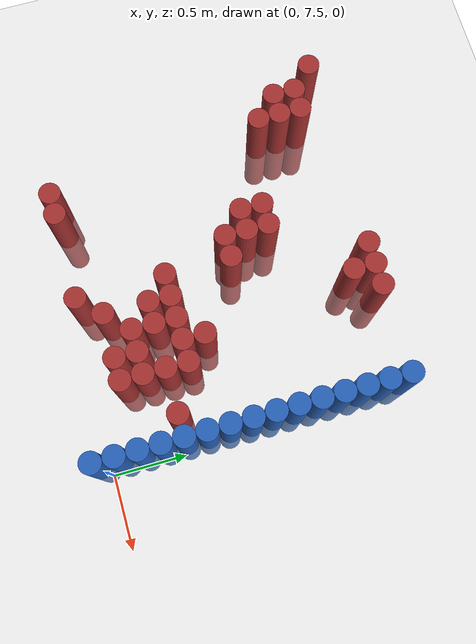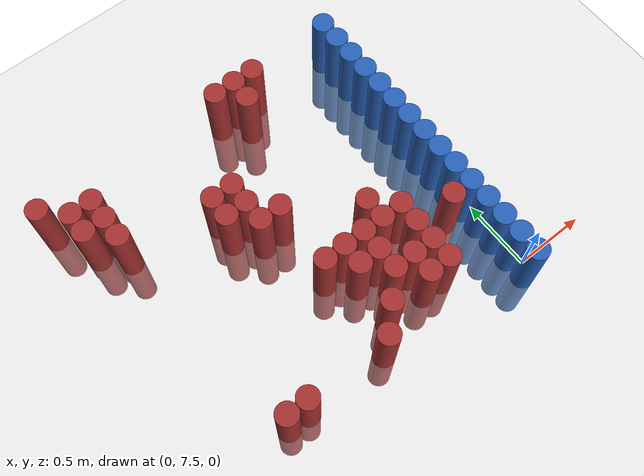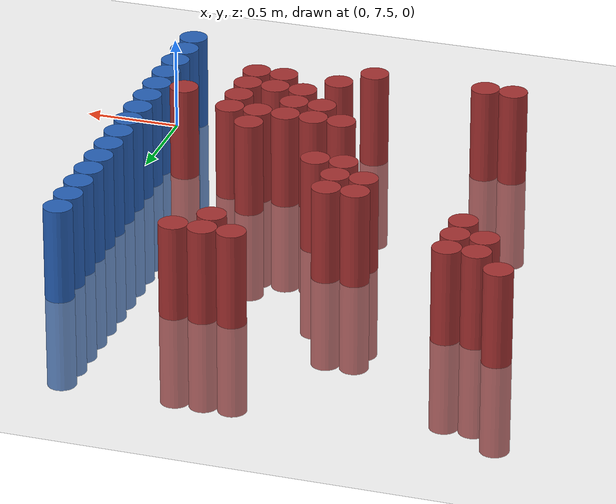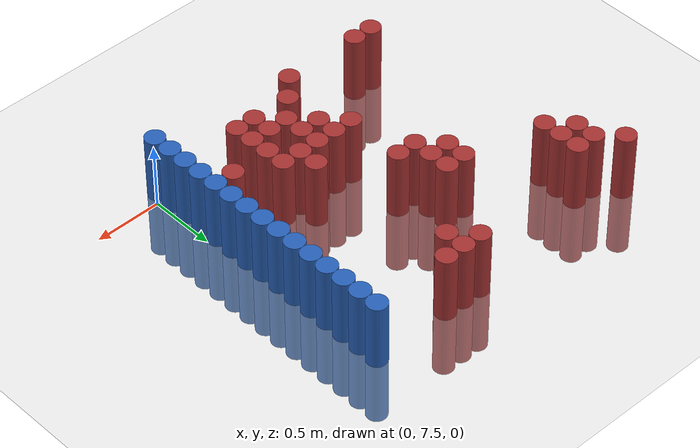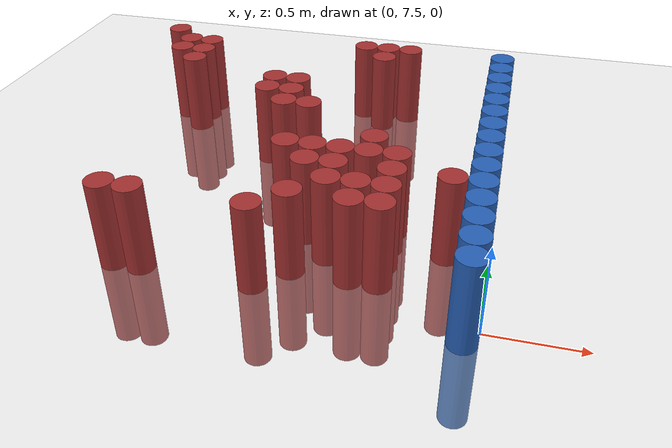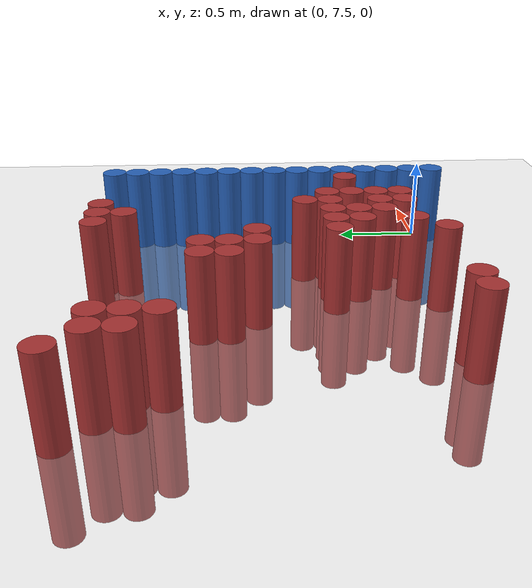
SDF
<sdf version="1.6">
 <world name="default">
  <model name="ground_plane">
   <static>1</static>
   <link name="link">
    <collision name="collision">
     <geometry><plane><normal>0 0 1</normal><size>100 100</size></plane></geometry>
     <surface><friction><ode><mu>100</mu><mu2>50</mu2></ode></friction></surface>
    </collision>
    <visual name="visual">
     <cast_shadows>0</cast_shadows>
     <geometry><plane><normal>0 0 1</normal><size>100 100</size></plane></geometry>
     <material>
      <script><uri>file://media/materials/scripts/gazebo.material</uri><name>Gazebo/Grey</name></script>
     </material>
    </visual>
   </link>
  </model>
  <model name="unit_cylinder_209">
   <static>1</static>
   <pose>-2.325000 9.525000 0.000000 0.000000 0.000000 0.000000</pose>
   <link name="link">
    <inertial>
     <mass>1</mass>
     <inertia><ixx>0.145833</ixx><ixy>0</ixy><ixz>0</ixz><iyy>0.145833</iyy><iyz>0</iyz><izz>0.125</izz></inertia>
    </inertial>
    <collision name="collision">
     <geometry><cylinder><radius>0.075000</radius><length>1</length></cylinder></geometry>
    </collision>
    <visual name="visual">
     <geometry><cylinder><radius>0.075000</radius><length>1</length></cylinder></geometry>
     <material>
      <ambient>0.648000 0.192000 0.192000 1</ambient>
      <diffuse>0.648000 0.192000 0.192000 1</diffuse>
     </material>
     <material>
      <script><name>Gazebo/Grey</name><uri>file://media/materials/scripts/gazebo.material</uri></script>
     </material>
    </visual>
   </link>
  </model>
  <model name="unit_cylinder_213">
   <static>1</static>
   <pose>-2.175000 9.225000 0.000000 0.000000 0.000000 0.000000</pose>
   <link name="link">
    <inertial>
     <mass>1</mass>
     <inertia><ixx>0.145833</ixx><ixy>0</ixy><ixz>0</ixz><iyy>0.145833</iyy><iyz>0</iyz><izz>0.125</izz></inertia>
    </inertial>
    <collision name="collision">
     <geometry><cylinder><radius>0.075000</radius><length>1</length></cylinder></geometry>
    </collision>
    <visual name="visual">
     <geometry><cylinder><radius>0.075000</radius><length>1</length></cylinder></geometry>
     <material>
      <ambient>0.648000 0.192000 0.192000 1</ambient>
      <diffuse>0.648000 0.192000 0.192000 1</diffuse>
     </material>
     <material>
      <script><name>Gazebo/Grey</name><uri>file://media/materials/scripts/gazebo.material</uri></script>
     </material>
    </visual>
   </link>
  </model>
  <model name="unit_cylinder_214">
   <static>1</static>
   <pose>-2.175000 9.375000 0.000000 0.000000 0.000000 0.000000</pose>
   <link name="link">
    <inertial>
     <mass>1</mass>
     <inertia><ixx>0.145833</ixx><ixy>0</ixy><ixz>0</ixz><iyy>0.145833</iyy><iyz>0</iyz><izz>0.125</izz></inertia>
    </inertial>
    <collision name="collision">
     <geometry><cylinder><radius>0.075000</radius><length>1</length></cylinder></geometry>
    </collision>
    <visual name="visual">
     <geometry><cylinder><radius>0.075000</radius><length>1</length></cylinder></geometry>
     <material>
      <ambient>0.648000 0.192000 0.192000 1</ambient>
      <diffuse>0.648000 0.192000 0.192000 1</diffuse>
     </material>
     <material>
      <script><name>Gazebo/Grey</name><uri>file://media/materials/scripts/gazebo.material</uri></script>
     </material>
    </visual>
   </link>
  </model>
  <model name="unit_cylinder_217">
   <static>1</static>
   <pose>-2.025000 9.075000 0.000000 0.000000 0.000000 0.000000</pose>
   <link name="link">
    <inertial>
     <mass>1</mass>
     <inertia><ixx>0.145833</ixx><ixy>0</ixy><ixz>0</ixz><iyy>0.145833</iyy><iyz>0</iyz><izz>0.125</izz></inertia>
    </inertial>
    <collision name="collision">
     <geometry><cylinder><radius>0.075000</radius><length>1</length></cylinder></geometry>
    </collision>
    <visual name="visual">
     <geometry><cylinder><radius>0.075000</radius><length>1</length></cylinder></geometry>
     <material>
      <ambient>0.648000 0.192000 0.192000 1</ambient>
      <diffuse>0.648000 0.192000 0.192000 1</diffuse>
     </material>
     <material>
      <script><name>Gazebo/Grey</name><uri>file://media/materials/scripts/gazebo.material</uri></script>
     </material>
    </visual>
   </link>
  </model>
  <model name="unit_cylinder_218">
   <static>1</static>
   <pose>-2.025000 9.225000 0.000000 0.000000 0.000000 0.000000</pose>
   <link name="link">
    <inertial>
     <mass>1</mass>
     <inertia><ixx>0.145833</ixx><ixy>0</ixy><ixz>0</ixz><iyy>0.145833</iyy><iyz>0</iyz><izz>0.125</izz></inertia>
    </inertial>
    <collision name="collision">
     <geometry><cylinder><radius>0.075000</radius><length>1</length></cylinder></geometry>
    </collision>
    <visual name="visual">
     <geometry><cylinder><radius>0.075000</radius><length>1</length></cylinder></geometry>
     <material>
      <ambient>0.648000 0.192000 0.192000 1</ambient>
      <diffuse>0.648000 0.192000 0.192000 1</diffuse>
     </material>
     <material>
      <script><name>Gazebo/Grey</name><uri>file://media/materials/scripts/gazebo.material</uri></script>
     </material>
    </visual>
   </link>
  </model>
  <model name="unit_cylinder_219">
   <static>1</static>
   <pose>-2.025000 9.375000 0.000000 0.000000 0.000000 0.000000</pose>
   <link name="link">
    <inertial>
     <mass>1</mass>
     <inertia><ixx>0.145833</ixx><ixy>0</ixy><ixz>0</ixz><iyy>0.145833</iyy><iyz>0</iyz><izz>0.125</izz></inertia>
    </inertial>
    <collision name="collision">
     <geometry><cylinder><radius>0.075000</radius><length>1</length></cylinder></geometry>
    </collision>
    <visual name="visual">
     <geometry><cylinder><radius>0.075000</radius><length>1</length></cylinder></geometry>
     <material>
      <ambient>0.648000 0.192000 0.192000 1</ambient>
      <diffuse>0.648000 0.192000 0.192000 1</diffuse>
     </material>
     <material>
      <script><name>Gazebo/Grey</name><uri>file://media/materials/scripts/gazebo.material</uri></script>
     </material>
    </visual>
   </link>
  </model>
  <model name="unit_cylinder_224">
   <static>1</static>
   <pose>-1.875000 7.575000 0.000000 0.000000 0.000000 0.000000</pose>
   <link name="link">
    <inertial>
     <mass>1</mass>
     <inertia><ixx>0.145833</ixx><ixy>0</ixy><ixz>0</ixz><iyy>0.145833</iyy><iyz>0</iyz><izz>0.125</izz></inertia>
    </inertial>
    <collision name="collision">
     <geometry><cylinder><radius>0.075000</radius><length>1</length></cylinder></geometry>
    </collision>
    <visual name="visual">
     <geometry><cylinder><radius>0.075000</radius><length>1</length></cylinder></geometry>
     <material>
      <ambient>0.648000 0.192000 0.192000 1</ambient>
      <diffuse>0.648000 0.192000 0.192000 1</diffuse>
     </material>
     <material>
      <script><name>Gazebo/Grey</name><uri>file://media/materials/scripts/gazebo.material</uri></script>
     </material>
    </visual>
   </link>
  </model>
  <model name="unit_cylinder_231">
   <static>1</static>
   <pose>-1.725000 7.575000 0.000000 0.000000 0.000000 0.000000</pose>
   <link name="link">
    <inertial>
     <mass>1</mass>
     <inertia><ixx>0.145833</ixx><ixy>0</ixy><ixz>0</ixz><iyy>0.145833</iyy><iyz>0</iyz><izz>0.125</izz></inertia>
    </inertial>
    <collision name="collision">
     <geometry><cylinder><radius>0.075000</radius><length>1</length></cylinder></geometry>
    </collision>
    <visual name="visual">
     <geometry><cylinder><radius>0.075000</radius><length>1</length></cylinder></geometry>
     <material>
      <ambient>0.648000 0.192000 0.192000 1</ambient>
      <diffuse>0.648000 0.192000 0.192000 1</diffuse>
     </material>
     <material>
      <script><name>Gazebo/Grey</name><uri>file://media/materials/scripts/gazebo.material</uri></script>
     </material>
    </visual>
   </link>
  </model>
  <model name="unit_cylinder_245">
   <static>1</static>
   <pose>-1.425000 8.775000 0.000000 0.000000 0.000000 0.000000</pose>
   <link name="link">
    <inertial>
     <mass>1</mass>
     <inertia><ixx>0.145833</ixx><ixy>0</ixy><ixz>0</ixz><iyy>0.145833</iyy><iyz>0</iyz><izz>0.125</izz></inertia>
    </inertial>
    <collision name="collision">
     <geometry><cylinder><radius>0.075000</radius><length>1</length></cylinder></geometry>
    </collision>
    <visual name="visual">
     <geometry><cylinder><radius>0.075000</radius><length>1</length></cylinder></geometry>
     <material>
      <ambient>0.648000 0.192000 0.192000 1</ambient>
      <diffuse>0.648000 0.192000 0.192000 1</diffuse>
     </material>
     <material>
      <script><name>Gazebo/Grey</name><uri>file://media/materials/scripts/gazebo.material</uri></script>
     </material>
    </visual>
   </link>
  </model>
  <model name="unit_cylinder_246">
   <static>1</static>
   <pose>-1.425000 8.925000 0.000000 0.000000 0.000000 0.000000</pose>
   <link name="link">
    <inertial>
     <mass>1</mass>
     <inertia><ixx>0.145833</ixx><ixy>0</ixy><ixz>0</ixz><iyy>0.145833</iyy><iyz>0</iyz><izz>0.125</izz></inertia>
    </inertial>
    <collision name="collision">
     <geometry><cylinder><radius>0.075000</radius><length>1</length></cylinder></geometry>
    </collision>
    <visual name="visual">
     <geometry><cylinder><radius>0.075000</radius><length>1</length></cylinder></geometry>
     <material>
      <ambient>0.648000 0.192000 0.192000 1</ambient>
      <diffuse>0.648000 0.192000 0.192000 1</diffuse>
     </material>
     <material>
      <script><name>Gazebo/Grey</name><uri>file://media/materials/scripts/gazebo.material</uri></script>
     </material>
    </visual>
   </link>
  </model>
  <model name="unit_cylinder_253">
   <static>1</static>
   <pose>-1.275000 8.625000 0.000000 0.000000 0.000000 0.000000</pose>
   <link name="link">
    <inertial>
     <mass>1</mass>
     <inertia><ixx>0.145833</ixx><ixy>0</ixy><ixz>0</ixz><iyy>0.145833</iyy><iyz>0</iyz><izz>0.125</izz></inertia>
    </inertial>
    <collision name="collision">
     <geometry><cylinder><radius>0.075000</radius><length>1</length></cylinder></geometry>
    </collision>
    <visual name="visual">
     <geometry><cylinder><radius>0.075000</radius><length>1</length></cylinder></geometry>
     <material>
      <ambient>0.648000 0.192000 0.192000 1</ambient>
      <diffuse>0.648000 0.192000 0.192000 1</diffuse>
     </material>
     <material>
      <script><name>Gazebo/Grey</name><uri>file://media/materials/scripts/gazebo.material</uri></script>
     </material>
    </visual>
   </link>
  </model>
  <model name="unit_cylinder_254">
   <static>1</static>
   <pose>-1.275000 8.775000 0.000000 0.000000 0.000000 0.000000</pose>
   <link name="link">
    <inertial>
     <mass>1</mass>
     <inertia><ixx>0.145833</ixx><ixy>0</ixy><ixz>0</ixz><iyy>0.145833</iyy><iyz>0</iyz><izz>0.125</izz></inertia>
    </inertial>
    <collision name="collision">
     <geometry><cylinder><radius>0.075000</radius><length>1</length></cylinder></geometry>
    </collision>
    <visual name="visual">
     <geometry><cylinder><radius>0.075000</radius><length>1</length></cylinder></geometry>
     <material>
      <ambient>0.648000 0.192000 0.192000 1</ambient>
      <diffuse>0.648000 0.192000 0.192000 1</diffuse>
     </material>
     <material>
      <script><name>Gazebo/Grey</name><uri>file://media/materials/scripts/gazebo.material</uri></script>
     </material>
    </visual>
   </link>
  </model>
  <model name="unit_cylinder_255">
   <static>1</static>
   <pose>-1.275000 8.925000 0.000000 0.000000 0.000000 0.000000</pose>
   <link name="link">
    <inertial>
     <mass>1</mass>
     <inertia><ixx>0.145833</ixx><ixy>0</ixy><ixz>0</ixz><iyy>0.145833</iyy><iyz>0</iyz><izz>0.125</izz></inertia>
    </inertial>
    <collision name="collision">
     <geometry><cylinder><radius>0.075000</radius><length>1</length></cylinder></geometry>
    </collision>
    <visual name="visual">
     <geometry><cylinder><radius>0.075000</radius><length>1</length></cylinder></geometry>
     <material>
      <ambient>0.648000 0.192000 0.192000 1</ambient>
      <diffuse>0.648000 0.192000 0.192000 1</diffuse>
     </material>
     <material>
      <script><name>Gazebo/Grey</name><uri>file://media/materials/scripts/gazebo.material</uri></script>
     </material>
    </visual>
   </link>
  </model>
  <model name="unit_cylinder_263">
   <static>1</static>
   <pose>-1.125000 7.575000 0.000000 0.000000 0.000000 0.000000</pose>
   <link name="link">
    <inertial>
     <mass>1</mass>
     <inertia><ixx>0.145833</ixx><ixy>0</ixy><ixz>0</ixz><iyy>0.145833</iyy><iyz>0</iyz><izz>0.125</izz></inertia>
    </inertial>
    <collision name="collision">
     <geometry><cylinder><radius>0.075000</radius><length>1</length></cylinder></geometry>
    </collision>
    <visual name="visual">
     <geometry><cylinder><radius>0.075000</radius><length>1</length></cylinder></geometry>
     <material>
      <ambient>0.648000 0.192000 0.192000 1</ambient>
      <diffuse>0.648000 0.192000 0.192000 1</diffuse>
     </material>
     <material>
      <script><name>Gazebo/Grey</name><uri>file://media/materials/scripts/gazebo.material</uri></script>
     </material>
    </visual>
   </link>
  </model>
  <model name="unit_cylinder_264">
   <static>1</static>
   <pose>-1.125000 8.175000 0.000000 0.000000 0.000000 0.000000</pose>
   <link name="link">
    <inertial>
     <mass>1</mass>
     <inertia><ixx>0.145833</ixx><ixy>0</ixy><ixz>0</ixz><iyy>0.145833</iyy><iyz>0</iyz><izz>0.125</izz></inertia>
    </inertial>
    <collision name="collision">
     <geometry><cylinder><radius>0.075000</radius><length>1</length></cylinder></geometry>
    </collision>
    <visual name="visual">
     <geometry><cylinder><radius>0.075000</radius><length>1</length></cylinder></geometry>
     <material>
      <ambient>0.648000 0.192000 0.192000 1</ambient>
      <diffuse>0.648000 0.192000 0.192000 1</diffuse>
     </material>
     <material>
      <script><name>Gazebo/Grey</name><uri>file://media/materials/scripts/gazebo.material</uri></script>
     </material>
    </visual>
   </link>
  </model>
  <model name="unit_cylinder_265">
   <static>1</static>
   <pose>-1.125000 8.625000 0.000000 0.000000 0.000000 0.000000</pose>
   <link name="link">
    <inertial>
     <mass>1</mass>
     <inertia><ixx>0.145833</ixx><ixy>0</ixy><ixz>0</ixz><iyy>0.145833</iyy><iyz>0</iyz><izz>0.125</izz></inertia>
    </inertial>
    <collision name="collision">
     <geometry><cylinder><radius>0.075000</radius><length>1</length></cylinder></geometry>
    </collision>
    <visual name="visual">
     <geometry><cylinder><radius>0.075000</radius><length>1</length></cylinder></geometry>
     <material>
      <ambient>0.648000 0.192000 0.192000 1</ambient>
      <diffuse>0.648000 0.192000 0.192000 1</diffuse>
     </material>
     <material>
      <script><name>Gazebo/Grey</name><uri>file://media/materials/scripts/gazebo.material</uri></script>
     </material>
    </visual>
   </link>
  </model>
  <model name="unit_cylinder_271">
   <static>1</static>
   <pose>-0.975000 7.725000 0.000000 0.000000 0.000000 0.000000</pose>
   <link name="link">
    <inertial>
     <mass>1</mass>
     <inertia><ixx>0.145833</ixx><ixy>0</ixy><ixz>0</ixz><iyy>0.145833</iyy><iyz>0</iyz><izz>0.125</izz></inertia>
    </inertial>
    <collision name="collision">
     <geometry><cylinder><radius>0.075000</radius><length>1</length></cylinder></geometry>
    </collision>
    <visual name="visual">
     <geometry><cylinder><radius>0.075000</radius><length>1</length></cylinder></geometry>
     <material>
      <ambient>0.648000 0.192000 0.192000 1</ambient>
      <diffuse>0.648000 0.192000 0.192000 1</diffuse>
     </material>
     <material>
      <script><name>Gazebo/Grey</name><uri>file://media/materials/scripts/gazebo.material</uri></script>
     </material>
    </visual>
   </link>
  </model>
  <model name="unit_cylinder_272">
   <static>1</static>
   <pose>-0.975000 8.025000 0.000000 0.000000 0.000000 0.000000</pose>
   <link name="link">
    <inertial>
     <mass>1</mass>
     <inertia><ixx>0.145833</ixx><ixy>0</ixy><ixz>0</ixz><iyy>0.145833</iyy><iyz>0</iyz><izz>0.125</izz></inertia>
    </inertial>
    <collision name="collision">
     <geometry><cylinder><radius>0.075000</radius><length>1</length></cylinder></geometry>
    </collision>
    <visual name="visual">
     <geometry><cylinder><radius>0.075000</radius><length>1</length></cylinder></geometry>
     <material>
      <ambient>0.648000 0.192000 0.192000 1</ambient>
      <diffuse>0.648000 0.192000 0.192000 1</diffuse>
     </material>
     <material>
      <script><name>Gazebo/Grey</name><uri>file://media/materials/scripts/gazebo.material</uri></script>
     </material>
    </visual>
   </link>
  </model>
  <model name="unit_cylinder_273">
   <static>1</static>
   <pose>-0.975000 8.175000 0.000000 0.000000 0.000000 0.000000</pose>
   <link name="link">
    <inertial>
     <mass>1</mass>
     <inertia><ixx>0.145833</ixx><ixy>0</ixy><ixz>0</ixz><iyy>0.145833</iyy><iyz>0</iyz><izz>0.125</izz></inertia>
    </inertial>
    <collision name="collision">
     <geometry><cylinder><radius>0.075000</radius><length>1</length></cylinder></geometry>
    </collision>
    <visual name="visual">
     <geometry><cylinder><radius>0.075000</radius><length>1</length></cylinder></geometry>
     <material>
      <ambient>0.648000 0.192000 0.192000 1</ambient>
      <diffuse>0.648000 0.192000 0.192000 1</diffuse>
     </material>
     <material>
      <script><name>Gazebo/Grey</name><uri>file://media/materials/scripts/gazebo.material</uri></script>
     </material>
    </visual>
   </link>
  </model>
  <model name="unit_cylinder_274">
   <static>1</static>
   <pose>-0.975000 9.525000 0.000000 0.000000 0.000000 0.000000</pose>
   <link name="link">
    <inertial>
     <mass>1</mass>
     <inertia><ixx>0.145833</ixx><ixy>0</ixy><ixz>0</ixz><iyy>0.145833</iyy><iyz>0</iyz><izz>0.125</izz></inertia>
    </inertial>
    <collision name="collision">
     <geometry><cylinder><radius>0.075000</radius><length>1</length></cylinder></geometry>
    </collision>
    <visual name="visual">
     <geometry><cylinder><radius>0.075000</radius><length>1</length></cylinder></geometry>
     <material>
      <ambient>0.648000 0.192000 0.192000 1</ambient>
      <diffuse>0.648000 0.192000 0.192000 1</diffuse>
     </material>
     <material>
      <script><name>Gazebo/Grey</name><uri>file://media/materials/scripts/gazebo.material</uri></script>
     </material>
    </visual>
   </link>
  </model>
  <model name="unit_cylinder_281">
   <static>1</static>
   <pose>-0.825000 7.875000 0.000000 0.000000 0.000000 0.000000</pose>
   <link name="link">
    <inertial>
     <mass>1</mass>
     <inertia><ixx>0.145833</ixx><ixy>0</ixy><ixz>0</ixz><iyy>0.145833</iyy><iyz>0</iyz><izz>0.125</izz></inertia>
    </inertial>
    <collision name="collision">
     <geometry><cylinder><radius>0.075000</radius><length>1</length></cylinder></geometry>
    </collision>
    <visual name="visual">
     <geometry><cylinder><radius>0.075000</radius><length>1</length></cylinder></geometry>
     <material>
      <ambient>0.648000 0.192000 0.192000 1</ambient>
      <diffuse>0.648000 0.192000 0.192000 1</diffuse>
     </material>
     <material>
      <script><name>Gazebo/Grey</name><uri>file://media/materials/scripts/gazebo.material</uri></script>
     </material>
    </visual>
   </link>
  </model>
  <model name="unit_cylinder_282">
   <static>1</static>
   <pose>-0.825000 8.025000 0.000000 0.000000 0.000000 0.000000</pose>
   <link name="link">
    <inertial>
     <mass>1</mass>
     <inertia><ixx>0.145833</ixx><ixy>0</ixy><ixz>0</ixz><iyy>0.145833</iyy><iyz>0</iyz><izz>0.125</izz></inertia>
    </inertial>
    <collision name="collision">
     <geometry><cylinder><radius>0.075000</radius><length>1</length></cylinder></geometry>
    </collision>
    <visual name="visual">
     <geometry><cylinder><radius>0.075000</radius><length>1</length></cylinder></geometry>
     <material>
      <ambient>0.648000 0.192000 0.192000 1</ambient>
      <diffuse>0.648000 0.192000 0.192000 1</diffuse>
     </material>
     <material>
      <script><name>Gazebo/Grey</name><uri>file://media/materials/scripts/gazebo.material</uri></script>
     </material>
    </visual>
   </link>
  </model>
  <model name="unit_cylinder_283">
   <static>1</static>
   <pose>-0.825000 8.175000 0.000000 0.000000 0.000000 0.000000</pose>
   <link name="link">
    <inertial>
     <mass>1</mass>
     <inertia><ixx>0.145833</ixx><ixy>0</ixy><ixz>0</ixz><iyy>0.145833</iyy><iyz>0</iyz><izz>0.125</izz></inertia>
    </inertial>
    <collision name="collision">
     <geometry><cylinder><radius>0.075000</radius><length>1</length></cylinder></geometry>
    </collision>
    <visual name="visual">
     <geometry><cylinder><radius>0.075000</radius><length>1</length></cylinder></geometry>
     <material>
      <ambient>0.648000 0.192000 0.192000 1</ambient>
      <diffuse>0.648000 0.192000 0.192000 1</diffuse>
     </material>
     <material>
      <script><name>Gazebo/Grey</name><uri>file://media/materials/scripts/gazebo.material</uri></script>
     </material>
    </visual>
   </link>
  </model>
  <model name="unit_cylinder_284">
   <static>1</static>
   <pose>-0.825000 9.375000 0.000000 0.000000 0.000000 0.000000</pose>
   <link name="link">
    <inertial>
     <mass>1</mass>
     <inertia><ixx>0.145833</ixx><ixy>0</ixy><ixz>0</ixz><iyy>0.145833</iyy><iyz>0</iyz><izz>0.125</izz></inertia>
    </inertial>
    <collision name="collision">
     <geometry><cylinder><radius>0.075000</radius><length>1</length></cylinder></geometry>
    </collision>
    <visual name="visual">
     <geometry><cylinder><radius>0.075000</radius><length>1</length></cylinder></geometry>
     <material>
      <ambient>0.648000 0.192000 0.192000 1</ambient>
      <diffuse>0.648000 0.192000 0.192000 1</diffuse>
     </material>
     <material>
      <script><name>Gazebo/Grey</name><uri>file://media/materials/scripts/gazebo.material</uri></script>
     </material>
    </visual>
   </link>
  </model>
  <model name="unit_cylinder_285">
   <static>1</static>
   <pose>-0.825000 9.525000 0.000000 0.000000 0.000000 0.000000</pose>
   <link name="link">
    <inertial>
     <mass>1</mass>
     <inertia><ixx>0.145833</ixx><ixy>0</ixy><ixz>0</ixz><iyy>0.145833</iyy><iyz>0</iyz><izz>0.125</izz></inertia>
    </inertial>
    <collision name="collision">
     <geometry><cylinder><radius>0.075000</radius><length>1</length></cylinder></geometry>
    </collision>
    <visual name="visual">
     <geometry><cylinder><radius>0.075000</radius><length>1</length></cylinder></geometry>
     <material>
      <ambient>0.648000 0.192000 0.192000 1</ambient>
      <diffuse>0.648000 0.192000 0.192000 1</diffuse>
     </material>
     <material>
      <script><name>Gazebo/Grey</name><uri>file://media/materials/scripts/gazebo.material</uri></script>
     </material>
    </visual>
   </link>
  </model>
  <model name="unit_cylinder_291">
   <static>1</static>
   <pose>-0.675000 7.725000 0.000000 0.000000 0.000000 0.000000</pose>
   <link name="link">
    <inertial>
     <mass>1</mass>
     <inertia><ixx>0.145833</ixx><ixy>0</ixy><ixz>0</ixz><iyy>0.145833</iyy><iyz>0</iyz><izz>0.125</izz></inertia>
    </inertial>
    <collision name="collision">
     <geometry><cylinder><radius>0.075000</radius><length>1</length></cylinder></geometry>
    </collision>
    <visual name="visual">
     <geometry><cylinder><radius>0.075000</radius><length>1</length></cylinder></geometry>
     <material>
      <ambient>0.648000 0.192000 0.192000 1</ambient>
      <diffuse>0.648000 0.192000 0.192000 1</diffuse>
     </material>
     <material>
      <script><name>Gazebo/Grey</name><uri>file://media/materials/scripts/gazebo.material</uri></script>
     </material>
    </visual>
   </link>
  </model>
  <model name="unit_cylinder_292">
   <static>1</static>
   <pose>-0.675000 7.875000 0.000000 0.000000 0.000000 0.000000</pose>
   <link name="link">
    <inertial>
     <mass>1</mass>
     <inertia><ixx>0.145833</ixx><ixy>0</ixy><ixz>0</ixz><iyy>0.145833</iyy><iyz>0</iyz><izz>0.125</izz></inertia>
    </inertial>
    <collision name="collision">
     <geometry><cylinder><radius>0.075000</radius><length>1</length></cylinder></geometry>
    </collision>
    <visual name="visual">
     <geometry><cylinder><radius>0.075000</radius><length>1</length></cylinder></geometry>
     <material>
      <ambient>0.648000 0.192000 0.192000 1</ambient>
      <diffuse>0.648000 0.192000 0.192000 1</diffuse>
     </material>
     <material>
      <script><name>Gazebo/Grey</name><uri>file://media/materials/scripts/gazebo.material</uri></script>
     </material>
    </visual>
   </link>
  </model>
  <model name="unit_cylinder_293">
   <static>1</static>
   <pose>-0.675000 8.175000 0.000000 0.000000 0.000000 0.000000</pose>
   <link name="link">
    <inertial>
     <mass>1</mass>
     <inertia><ixx>0.145833</ixx><ixy>0</ixy><ixz>0</ixz><iyy>0.145833</iyy><iyz>0</iyz><izz>0.125</izz></inertia>
    </inertial>
    <collision name="collision">
     <geometry><cylinder><radius>0.075000</radius><length>1</length></cylinder></geometry>
    </collision>
    <visual name="visual">
     <geometry><cylinder><radius>0.075000</radius><length>1</length></cylinder></geometry>
     <material>
      <ambient>0.648000 0.192000 0.192000 1</ambient>
      <diffuse>0.648000 0.192000 0.192000 1</diffuse>
     </material>
     <material>
      <script><name>Gazebo/Grey</name><uri>file://media/materials/scripts/gazebo.material</uri></script>
     </material>
    </visual>
   </link>
  </model>
  <model name="unit_cylinder_294">
   <static>1</static>
   <pose>-0.675000 8.325000 0.000000 0.000000 0.000000 0.000000</pose>
   <link name="link">
    <inertial>
     <mass>1</mass>
     <inertia><ixx>0.145833</ixx><ixy>0</ixy><ixz>0</ixz><iyy>0.145833</iyy><iyz>0</iyz><izz>0.125</izz></inertia>
    </inertial>
    <collision name="collision">
     <geometry><cylinder><radius>0.075000</radius><length>1</length></cylinder></geometry>
    </collision>
    <visual name="visual">
     <geometry><cylinder><radius>0.075000</radius><length>1</length></cylinder></geometry>
     <material>
      <ambient>0.648000 0.192000 0.192000 1</ambient>
      <diffuse>0.648000 0.192000 0.192000 1</diffuse>
     </material>
     <material>
      <script><name>Gazebo/Grey</name><uri>file://media/materials/scripts/gazebo.material</uri></script>
     </material>
    </visual>
   </link>
  </model>
  <model name="unit_cylinder_295">
   <static>1</static>
   <pose>-0.675000 9.525000 0.000000 0.000000 0.000000 0.000000</pose>
   <link name="link">
    <inertial>
     <mass>1</mass>
     <inertia><ixx>0.145833</ixx><ixy>0</ixy><ixz>0</ixz><iyy>0.145833</iyy><iyz>0</iyz><izz>0.125</izz></inertia>
    </inertial>
    <collision name="collision">
     <geometry><cylinder><radius>0.075000</radius><length>1</length></cylinder></geometry>
    </collision>
    <visual name="visual">
     <geometry><cylinder><radius>0.075000</radius><length>1</length></cylinder></geometry>
     <material>
      <ambient>0.648000 0.192000 0.192000 1</ambient>
      <diffuse>0.648000 0.192000 0.192000 1</diffuse>
     </material>
     <material>
      <script><name>Gazebo/Grey</name><uri>file://media/materials/scripts/gazebo.material</uri></script>
     </material>
    </visual>
   </link>
  </model>
  <model name="unit_cylinder_300">
   <static>1</static>
   <pose>-0.525000 7.725000 0.000000 0.000000 0.000000 0.000000</pose>
   <link name="link">
    <inertial>
     <mass>1</mass>
     <inertia><ixx>0.145833</ixx><ixy>0</ixy><ixz>0</ixz><iyy>0.145833</iyy><iyz>0</iyz><izz>0.125</izz></inertia>
    </inertial>
    <collision name="collision">
     <geometry><cylinder><radius>0.075000</radius><length>1</length></cylinder></geometry>
    </collision>
    <visual name="visual">
     <geometry><cylinder><radius>0.075000</radius><length>1</length></cylinder></geometry>
     <material>
      <ambient>0.648000 0.192000 0.192000 1</ambient>
      <diffuse>0.648000 0.192000 0.192000 1</diffuse>
     </material>
     <material>
      <script><name>Gazebo/Grey</name><uri>file://media/materials/scripts/gazebo.material</uri></script>
     </material>
    </visual>
   </link>
  </model>
  <model name="unit_cylinder_301">
   <static>1</static>
   <pose>-0.525000 7.875000 0.000000 0.000000 0.000000 0.000000</pose>
   <link name="link">
    <inertial>
     <mass>1</mass>
     <inertia><ixx>0.145833</ixx><ixy>0</ixy><ixz>0</ixz><iyy>0.145833</iyy><iyz>0</iyz><izz>0.125</izz></inertia>
    </inertial>
    <collision name="collision">
     <geometry><cylinder><radius>0.075000</radius><length>1</length></cylinder></geometry>
    </collision>
    <visual name="visual">
     <geometry><cylinder><radius>0.075000</radius><length>1</length></cylinder></geometry>
     <material>
      <ambient>0.648000 0.192000 0.192000 1</ambient>
      <diffuse>0.648000 0.192000 0.192000 1</diffuse>
     </material>
     <material>
      <script><name>Gazebo/Grey</name><uri>file://media/materials/scripts/gazebo.material</uri></script>
     </material>
    </visual>
   </link>
  </model>
  <model name="unit_cylinder_302">
   <static>1</static>
   <pose>-0.525000 8.025000 0.000000 0.000000 0.000000 0.000000</pose>
   <link name="link">
    <inertial>
     <mass>1</mass>
     <inertia><ixx>0.145833</ixx><ixy>0</ixy><ixz>0</ixz><iyy>0.145833</iyy><iyz>0</iyz><izz>0.125</izz></inertia>
    </inertial>
    <collision name="collision">
     <geometry><cylinder><radius>0.075000</radius><length>1</length></cylinder></geometry>
    </collision>
    <visual name="visual">
     <geometry><cylinder><radius>0.075000</radius><length>1</length></cylinder></geometry>
     <material>
      <ambient>0.648000 0.192000 0.192000 1</ambient>
      <diffuse>0.648000 0.192000 0.192000 1</diffuse>
     </material>
     <material>
      <script><name>Gazebo/Grey</name><uri>file://media/materials/scripts/gazebo.material</uri></script>
     </material>
    </visual>
   </link>
  </model>
  <model name="unit_cylinder_303">
   <static>1</static>
   <pose>-0.525000 8.175000 0.000000 0.000000 0.000000 0.000000</pose>
   <link name="link">
    <inertial>
     <mass>1</mass>
     <inertia><ixx>0.145833</ixx><ixy>0</ixy><ixz>0</ixz><iyy>0.145833</iyy><iyz>0</iyz><izz>0.125</izz></inertia>
    </inertial>
    <collision name="collision">
     <geometry><cylinder><radius>0.075000</radius><length>1</length></cylinder></geometry>
    </collision>
    <visual name="visual">
     <geometry><cylinder><radius>0.075000</radius><length>1</length></cylinder></geometry>
     <material>
      <ambient>0.648000 0.192000 0.192000 1</ambient>
      <diffuse>0.648000 0.192000 0.192000 1</diffuse>
     </material>
     <material>
      <script><name>Gazebo/Grey</name><uri>file://media/materials/scripts/gazebo.material</uri></script>
     </material>
    </visual>
   </link>
  </model>
  <model name="unit_cylinder_315">
   <static>1</static>
   <pose>-0.225000 8.025000 0.000000 0.000000 0.000000 0.000000</pose>
   <link name="link">
    <inertial>
     <mass>1</mass>
     <inertia><ixx>0.145833</ixx><ixy>0</ixy><ixz>0</ixz><iyy>0.145833</iyy><iyz>0</iyz><izz>0.125</izz></inertia>
    </inertial>
    <collision name="collision">
     <geometry><cylinder><radius>0.075000</radius><length>1</length></cylinder></geometry>
    </collision>
    <visual name="visual">
     <geometry><cylinder><radius>0.075000</radius><length>1</length></cylinder></geometry>
     <material>
      <ambient>0.648000 0.192000 0.192000 1</ambient>
      <diffuse>0.648000 0.192000 0.192000 1</diffuse>
     </material>
     <material>
      <script><name>Gazebo/Grey</name><uri>file://media/materials/scripts/gazebo.material</uri></script>
     </material>
    </visual>
   </link>
  </model>
  <model name="unit_cylinder_331">
   <static>1</static>
   <pose>-0.075000 7.425000 0.000000 0.000000 0.000000 0.000000</pose>
   <link name="link">
    <inertial>
     <mass>1</mass>
     <inertia><ixx>0.145833</ixx><ixy>0</ixy><ixz>0</ixz><iyy>0.145833</iyy><iyz>0</iyz><izz>0.125</izz></inertia>
    </inertial>
    <collision name="collision">
     <geometry><cylinder><radius>0.075000</radius><length>1</length></cylinder></geometry>
    </collision>
    <visual name="visual">
     <geometry><cylinder><radius>0.075000</radius><length>1</length></cylinder></geometry>
     <material>
      <ambient>0.152000 0.379000 0.720000 1</ambient>
      <diffuse>0.152000 0.379000 0.720000 1</diffuse>
     </material>
     <material>
      <script><name>Gazebo/Grey</name><uri>file://media/materials/scripts/gazebo.material</uri></script>
     </material>
    </visual>
   </link>
  </model>
  <model name="unit_cylinder_332">
   <static>1</static>
   <pose>-0.075000 7.575000 0.000000 0.000000 0.000000 0.000000</pose>
   <link name="link">
    <inertial>
     <mass>1</mass>
     <inertia><ixx>0.145833</ixx><ixy>0</ixy><ixz>0</ixz><iyy>0.145833</iyy><iyz>0</iyz><izz>0.125</izz></inertia>
    </inertial>
    <collision name="collision">
     <geometry><cylinder><radius>0.075000</radius><length>1</length></cylinder></geometry>
    </collision>
    <visual name="visual">
     <geometry><cylinder><radius>0.075000</radius><length>1</length></cylinder></geometry>
     <material>
      <ambient>0.152000 0.379000 0.720000 1</ambient>
      <diffuse>0.152000 0.379000 0.720000 1</diffuse>
     </material>
     <material>
      <script><name>Gazebo/Grey</name><uri>file://media/materials/scripts/gazebo.material</uri></script>
     </material>
    </visual>
   </link>
  </model>
  <model name="unit_cylinder_333">
   <static>1</static>
   <pose>-0.075000 7.725000 0.000000 0.000000 0.000000 0.000000</pose>
   <link name="link">
    <inertial>
     <mass>1</mass>
     <inertia><ixx>0.145833</ixx><ixy>0</ixy><ixz>0</ixz><iyy>0.145833</iyy><iyz>0</iyz><izz>0.125</izz></inertia>
    </inertial>
    <collision name="collision">
     <geometry><cylinder><radius>0.075000</radius><length>1</length></cylinder></geometry>
    </collision>
    <visual name="visual">
     <geometry><cylinder><radius>0.075000</radius><length>1</length></cylinder></geometry>
     <material>
      <ambient>0.152000 0.379000 0.720000 1</ambient>
      <diffuse>0.152000 0.379000 0.720000 1</diffuse>
     </material>
     <material>
      <script><name>Gazebo/Grey</name><uri>file://media/materials/scripts/gazebo.material</uri></script>
     </material>
    </visual>
   </link>
  </model>
  <model name="unit_cylinder_334">
   <static>1</static>
   <pose>-0.075000 7.875000 0.000000 0.000000 0.000000 0.000000</pose>
   <link name="link">
    <inertial>
     <mass>1</mass>
     <inertia><ixx>0.145833</ixx><ixy>0</ixy><ixz>0</ixz><iyy>0.145833</iyy><iyz>0</iyz><izz>0.125</izz></inertia>
    </inertial>
    <collision name="collision">
     <geometry><cylinder><radius>0.075000</radius><length>1</length></cylinder></geometry>
    </collision>
    <visual name="visual">
     <geometry><cylinder><radius>0.075000</radius><length>1</length></cylinder></geometry>
     <material>
      <ambient>0.152000 0.379000 0.720000 1</ambient>
      <diffuse>0.152000 0.379000 0.720000 1</diffuse>
     </material>
     <material>
      <script><name>Gazebo/Grey</name><uri>file://media/materials/scripts/gazebo.material</uri></script>
     </material>
    </visual>
   </link>
  </model>
  <model name="unit_cylinder_335">
   <static>1</static>
   <pose>-0.075000 8.025000 0.000000 0.000000 0.000000 0.000000</pose>
   <link name="link">
    <inertial>
     <mass>1</mass>
     <inertia><ixx>0.145833</ixx><ixy>0</ixy><ixz>0</ixz><iyy>0.145833</iyy><iyz>0</iyz><izz>0.125</izz></inertia>
    </inertial>
    <collision name="collision">
     <geometry><cylinder><radius>0.075000</radius><length>1</length></cylinder></geometry>
    </collision>
    <visual name="visual">
     <geometry><cylinder><radius>0.075000</radius><length>1</length></cylinder></geometry>
     <material>
      <ambient>0.152000 0.379000 0.720000 1</ambient>
      <diffuse>0.152000 0.379000 0.720000 1</diffuse>
     </material>
     <material>
      <script><name>Gazebo/Grey</name><uri>file://media/materials/scripts/gazebo.material</uri></script>
     </material>
    </visual>
   </link>
  </model>
  <model name="unit_cylinder_336">
   <static>1</static>
   <pose>-0.075000 8.175000 0.000000 0.000000 0.000000 0.000000</pose>
   <link name="link">
    <inertial>
     <mass>1</mass>
     <inertia><ixx>0.145833</ixx><ixy>0</ixy><ixz>0</ixz><iyy>0.145833</iyy><iyz>0</iyz><izz>0.125</izz></inertia>
    </inertial>
    <collision name="collision">
     <geometry><cylinder><radius>0.075000</radius><length>1</length></cylinder></geometry>
    </collision>
    <visual name="visual">
     <geometry><cylinder><radius>0.075000</radius><length>1</length></cylinder></geometry>
     <material>
      <ambient>0.152000 0.379000 0.720000 1</ambient>
      <diffuse>0.152000 0.379000 0.720000 1</diffuse>
     </material>
     <material>
      <script><name>Gazebo/Grey</name><uri>file://media/materials/scripts/gazebo.material</uri></script>
     </material>
    </visual>
   </link>
  </model>
  <model name="unit_cylinder_337">
   <static>1</static>
   <pose>-0.075000 8.325000 0.000000 0.000000 0.000000 0.000000</pose>
   <link name="link">
    <inertial>
     <mass>1</mass>
     <inertia><ixx>0.145833</ixx><ixy>0</ixy><ixz>0</ixz><iyy>0.145833</iyy><iyz>0</iyz><izz>0.125</izz></inertia>
    </inertial>
    <collision name="collision">
     <geometry><cylinder><radius>0.075000</radius><length>1</length></cylinder></geometry>
    </collision>
    <visual name="visual">
     <geometry><cylinder><radius>0.075000</radius><length>1</length></cylinder></geometry>
     <material>
      <ambient>0.152000 0.379000 0.720000 1</ambient>
      <diffuse>0.152000 0.379000 0.720000 1</diffuse>
     </material>
     <material>
      <script><name>Gazebo/Grey</name><uri>file://media/materials/scripts/gazebo.material</uri></script>
     </material>
    </visual>
   </link>
  </model>
  <model name="unit_cylinder_338">
   <static>1</static>
   <pose>-0.075000 8.475000 0.000000 0.000000 0.000000 0.000000</pose>
   <link name="link">
    <inertial>
     <mass>1</mass>
     <inertia><ixx>0.145833</ixx><ixy>0</ixy><ixz>0</ixz><iyy>0.145833</iyy><iyz>0</iyz><izz>0.125</izz></inertia>
    </inertial>
    <collision name="collision">
     <geometry><cylinder><radius>0.075000</radius><length>1</length></cylinder></geometry>
    </collision>
    <visual name="visual">
     <geometry><cylinder><radius>0.075000</radius><length>1</length></cylinder></geometry>
     <material>
      <ambient>0.152000 0.379000 0.720000 1</ambient>
      <diffuse>0.152000 0.379000 0.720000 1</diffuse>
     </material>
     <material>
      <script><name>Gazebo/Grey</name><uri>file://media/materials/scripts/gazebo.material</uri></script>
     </material>
    </visual>
   </link>
  </model>
  <model name="unit_cylinder_339">
   <static>1</static>
   <pose>-0.075000 8.625000 0.000000 0.000000 0.000000 0.000000</pose>
   <link name="link">
    <inertial>
     <mass>1</mass>
     <inertia><ixx>0.145833</ixx><ixy>0</ixy><ixz>0</ixz><iyy>0.145833</iyy><iyz>0</iyz><izz>0.125</izz></inertia>
    </inertial>
    <collision name="collision">
     <geometry><cylinder><radius>0.075000</radius><length>1</length></cylinder></geometry>
    </collision>
    <visual name="visual">
     <geometry><cylinder><radius>0.075000</radius><length>1</length></cylinder></geometry>
     <material>
      <ambient>0.152000 0.379000 0.720000 1</ambient>
      <diffuse>0.152000 0.379000 0.720000 1</diffuse>
     </material>
     <material>
      <script><name>Gazebo/Grey</name><uri>file://media/materials/scripts/gazebo.material</uri></script>
     </material>
    </visual>
   </link>
  </model>
  <model name="unit_cylinder_340">
   <static>1</static>
   <pose>-0.075000 8.775000 0.000000 0.000000 0.000000 0.000000</pose>
   <link name="link">
    <inertial>
     <mass>1</mass>
     <inertia><ixx>0.145833</ixx><ixy>0</ixy><ixz>0</ixz><iyy>0.145833</iyy><iyz>0</iyz><izz>0.125</izz></inertia>
    </inertial>
    <collision name="collision">
     <geometry><cylinder><radius>0.075000</radius><length>1</length></cylinder></geometry>
    </collision>
    <visual name="visual">
     <geometry><cylinder><radius>0.075000</radius><length>1</length></cylinder></geometry>
     <material>
      <ambient>0.152000 0.379000 0.720000 1</ambient>
      <diffuse>0.152000 0.379000 0.720000 1</diffuse>
     </material>
     <material>
      <script><name>Gazebo/Grey</name><uri>file://media/materials/scripts/gazebo.material</uri></script>
     </material>
    </visual>
   </link>
  </model>
  <model name="unit_cylinder_341">
   <static>1</static>
   <pose>-0.075000 8.925000 0.000000 0.000000 0.000000 0.000000</pose>
   <link name="link">
    <inertial>
     <mass>1</mass>
     <inertia><ixx>0.145833</ixx><ixy>0</ixy><ixz>0</ixz><iyy>0.145833</iyy><iyz>0</iyz><izz>0.125</izz></inertia>
    </inertial>
    <collision name="collision">
     <geometry><cylinder><radius>0.075000</radius><length>1</length></cylinder></geometry>
    </collision>
    <visual name="visual">
     <geometry><cylinder><radius>0.075000</radius><length>1</length></cylinder></geometry>
     <material>
      <ambient>0.152000 0.379000 0.720000 1</ambient>
      <diffuse>0.152000 0.379000 0.720000 1</diffuse>
     </material>
     <material>
      <script><name>Gazebo/Grey</name><uri>file://media/materials/scripts/gazebo.material</uri></script>
     </material>
    </visual>
   </link>
  </model>
  <model name="unit_cylinder_342">
   <static>1</static>
   <pose>-0.075000 9.075000 0.000000 0.000000 0.000000 0.000000</pose>
   <link name="link">
    <inertial>
     <mass>1</mass>
     <inertia><ixx>0.145833</ixx><ixy>0</ixy><ixz>0</ixz><iyy>0.145833</iyy><iyz>0</iyz><izz>0.125</izz></inertia>
    </inertial>
    <collision name="collision">
     <geometry><cylinder><radius>0.075000</radius><length>1</length></cylinder></geometry>
    </collision>
    <visual name="visual">
     <geometry><cylinder><radius>0.075000</radius><length>1</length></cylinder></geometry>
     <material>
      <ambient>0.152000 0.379000 0.720000 1</ambient>
      <diffuse>0.152000 0.379000 0.720000 1</diffuse>
     </material>
     <material>
      <script><name>Gazebo/Grey</name><uri>file://media/materials/scripts/gazebo.material</uri></script>
     </material>
    </visual>
   </link>
  </model>
  <model name="unit_cylinder_343">
   <static>1</static>
   <pose>-0.075000 9.225000 0.000000 0.000000 0.000000 0.000000</pose>
   <link name="link">
    <inertial>
     <mass>1</mass>
     <inertia><ixx>0.145833</ixx><ixy>0</ixy><ixz>0</ixz><iyy>0.145833</iyy><iyz>0</iyz><izz>0.125</izz></inertia>
    </inertial>
    <collision name="collision">
     <geometry><cylinder><radius>0.075000</radius><length>1</length></cylinder></geometry>
    </collision>
    <visual name="visual">
     <geometry><cylinder><radius>0.075000</radius><length>1</length></cylinder></geometry>
     <material>
      <ambient>0.152000 0.379000 0.720000 1</ambient>
      <diffuse>0.152000 0.379000 0.720000 1</diffuse>
     </material>
     <material>
      <script><name>Gazebo/Grey</name><uri>file://media/materials/scripts/gazebo.material</uri></script>
     </material>
    </visual>
   </link>
  </model>
  <model name="unit_cylinder_344">
   <static>1</static>
   <pose>-0.075000 9.375000 0.000000 0.000000 0.000000 0.000000</pose>
   <link name="link">
    <inertial>
     <mass>1</mass>
     <inertia><ixx>0.145833</ixx><ixy>0</ixy><ixz>0</ixz><iyy>0.145833</iyy><iyz>0</iyz><izz>0.125</izz></inertia>
    </inertial>
    <collision name="collision">
     <geometry><cylinder><radius>0.075000</radius><length>1</length></cylinder></geometry>
    </collision>
    <visual name="visual">
     <geometry><cylinder><radius>0.075000</radius><length>1</length></cylinder></geometry>
     <material>
      <ambient>0.152000 0.379000 0.720000 1</ambient>
      <diffuse>0.152000 0.379000 0.720000 1</diffuse>
     </material>
     <material>
      <script><name>Gazebo/Grey</name><uri>file://media/materials/scripts/gazebo.material</uri></script>
     </material>
    </visual>
   </link>
  </model>
  <model name="unit_cylinder_345">
   <static>1</static>
   <pose>-0.075000 9.525000 0.000000 0.000000 0.000000 0.000000</pose>
   <link name="link">
    <inertial>
     <mass>1</mass>
     <inertia><ixx>0.145833</ixx><ixy>0</ixy><ixz>0</ixz><iyy>0.145833</iyy><iyz>0</iyz><izz>0.125</izz></inertia>
    </inertial>
    <collision name="collision">
     <geometry><cylinder><radius>0.075000</radius><length>1</length></cylinder></geometry>
    </collision>
    <visual name="visual">
     <geometry><cylinder><radius>0.075000</radius><length>1</length></cylinder></geometry>
     <material>
      <ambient>0.152000 0.379000 0.720000 1</ambient>
      <diffuse>0.152000 0.379000 0.720000 1</diffuse>
     </material>
     <material>
      <script><name>Gazebo/Grey</name><uri>file://media/materials/scripts/gazebo.material</uri></script>
     </material>
    </visual>
   </link>
  </model>
 </world>
</sdf>
